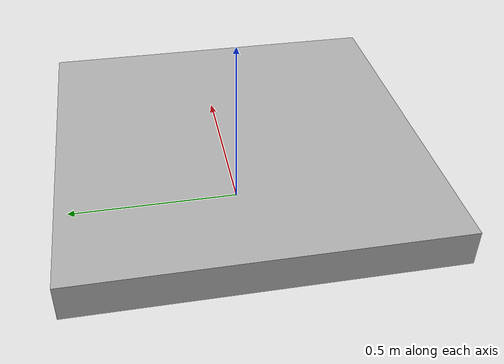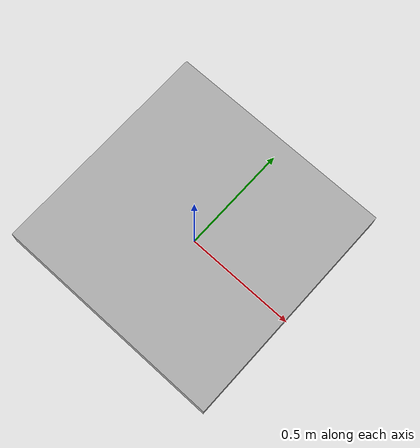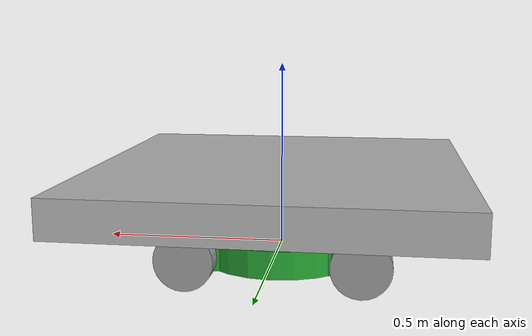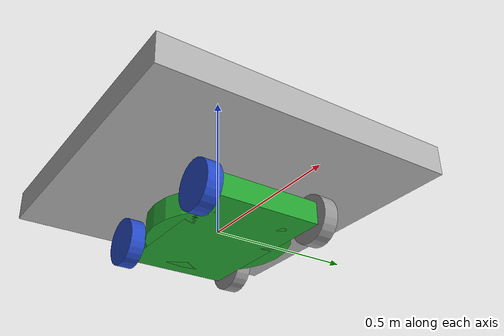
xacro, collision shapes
<?xml version='1.0'?>

<robot name="skid_steer_bot" xmlns:xacro="http://www.ros.org/wiki/xacro">

  <xacro:include filename="$(find skid_steer_bot)/urdf/skid_steer_bot.gazebo" />

  <!-- Scale the robot size to fit the environment -->
  <xacro:property name="scale" value="1.0" />

  <!-- Length along X-axis, Width along Y-axis, Height along Z-axis -->
  <xacro:property name="mower_width" value="${scale * 0.46}" />
  <xacro:property name="mower_length" value="${scale * 0.46}" />
  <xacro:property name="mower_height" value="${scale * 0.3}" />
  <xacro:property name="mower_mass" value="${scale * 10}" />

  <xacro:property name="base_x_offset" value="0" />

  <!-- inertia = 1/12*m(h^2+d^2) -->
  <xacro:property name="height_2" value="${mower_height * mower_height}" />
  <xacro:property name="width_2" value="${mower_width * mower_width}" />
  <xacro:property name="length_2" value="${mower_length * mower_length}" />
  <xacro:property name="mower_inertia_xx" value="${mower_mass/12.0 * (height_2 + width_2)}" />
  <xacro:property name="mower_inertia_yy" value="${mower_mass/12.0 * (height_2 + length_2)}" />
  <xacro:property name="mower_inertia_zz" value="${mower_mass/12.0 * (width_2 + length_2)}" />
  <xacro:property name="mower_i_x_pos" value="${base_x_offset}" />
  <xacro:property name="mower_i_z_pos" value="${mower_height/3.0}" />

  <xacro:property name="mower_frame_width" value="${mower_width - 2.1 * wheel_length}" />
  <xacro:property name="mower_frame_length" value="${mower_length*1.2}" />
  <xacro:property name="mower_frame_height" value="${mower_height/4.0}" />

  <xacro:property name="hardware_width" value="${mower_width/2.0}" />
  <xacro:property name="hardware_length" value="${mower_length/2.0}" />
  <xacro:property name="hardware_height" value="${mower_height/2.0}" />
  <xacro:property name="hardware_z_offset" value="${hardware_height/2.0}" />

  <xacro:property name="wheel_length" value="${scale * 0.05}" />
  <xacro:property name="wheel_radius" value="${scale * 0.08}" />
  <xacro:property name="wheel_mass" value="${scale * 1}" />
  <xacro:property name="wheel_inertia" value="${scale * 1e-3}" />
  <xacro:property name="wheel_x_offset" value="${base_x_offset + mower_length/2.0}" />
  <xacro:property name="wheel_y_offset" value="${mower_width/2.0 - wheel_length/2.0}" />

  <xacro:property name="camerra_width" value="0.05" />
  <xacro:property name="camerra_length" value="0.05" />
  <xacro:property name="camerra_height" value="0.05" />
  <xacro:property name="camerra_x_offset" value="${hardware_length/2.0 + base_x_offset - camerra_length/2.0 + 0.001}" />
  <xacro:property name="camerra_z_offset" value="${hardware_height - camerra_height/2.0 + 0.001}" />

  <xacro:property name="platform_width" value="1" />
  <xacro:property name="platform_length" value="1" />
  <xacro:property name="platform_height" value="0.1" />
  <xacro:property name="platform_x_offset" value="${base_x_offset}" />
  <xacro:property name="platform_z_offset" value="${hardware_height + 0.025}" />

  <xacro:property name="wheel_kp" value="1000000.0" />
  <xacro:property name="wheel_kd" value="100.0" />
  <xacro:property name="wheel_mu1" value="1" />
  <xacro:property name="wheel_mu2" value="1" />
  <xacro:property name="wheel_slip1" value="0.5" />
  <xacro:property name="wheel_slip2" value="0" />

  <link name="robot_footprint"></link>

  <joint name="robot_footprint_joint" type="fixed">
    <origin xyz="0 0 0" rpy="0 0 0" />
    <parent link="robot_footprint" />
    <child link="chassis" />
  </joint>

  <link name='chassis'>
    <inertial>
      <mass value="${mower_mass}"/>
      <origin xyz="${mower_i_x_pos} 0 ${mower_i_z_pos}" rpy=" 0 0 0"/>
      <inertia
          ixx="${mower_inertia_xx}" ixy="0" ixz="0"
          iyy="${mower_inertia_yy}" iyz="0"
          izz="${mower_inertia_zz}" />
    </inertial>

    <collision>
      <origin xyz="${base_x_offset} 0 0" rpy=" 0 0 0"/>
      <geometry>
        <box size="${mower_frame_length} ${mower_frame_width} ${mower_frame_height}"/>
      </geometry>
    </collision>
    <visual>
      <origin xyz="${base_x_offset} 0 0" rpy=" 0 0 0"/>
      <geometry>
        <box size="${mower_frame_length} ${mower_frame_width} ${mower_frame_height}"/>
      </geometry>
    </visual>

    <!-- blade frame -->
    <collision>
      <origin xyz="${base_x_offset} 0 0" rpy=" 0 0 0"/>
      <geometry>
        <cylinder radius="${mower_width/2.0}" length="${mower_frame_height}"/>
      </geometry>
    </collision>
    <visual>
      <origin xyz="${base_x_offset} 0 0" rpy=" 0 0 0"/>
      <geometry>
        <cylinder radius="${mower_width/2.0}" length="${mower_frame_height}"/>
      </geometry>
    </visual>

    <!-- hardware frame -->
    <collision>
      <origin xyz="${base_x_offset} 0 ${hardware_z_offset}" rpy=" 0 0 0"/>
      <geometry>
        <box size="${hardware_length} ${hardware_width} ${hardware_height}"/>
      </geometry>
    </collision>
    <visual>
      <origin xyz="${base_x_offset} 0 ${hardware_z_offset}" rpy=" 0 0 0"/>
      <geometry>
        <box size="${hardware_length} ${hardware_width} ${hardware_height}"/>
      </geometry>
    </visual>

  </link>

  <!-- left back wheel -->
  <joint type="continuous" name="left_back_wheel_hinge">
    <origin xyz="-${wheel_x_offset} ${wheel_y_offset} 0" rpy="0 0 0"/>
    <child link="left_back_wheel"/>
    <parent link="chassis"/>
    <axis xyz="0 1 0" rpy="0 0 0"/>
    <limit effort="10000" velocity="1000"/>
    <joint_properties damping="1.0" friction="1.0"/>
  </joint>

  <link name="left_back_wheel">
    <inertial>
      <mass value="${wheel_mass}"/>
      <origin xyz="0.0 0 0" rpy=" 0 1.5707 1.5707"/>
      <inertia
        ixx="${wheel_inertia}" ixy="0" ixz="0"
        iyy="${wheel_inertia}" iyz="0"
        izz="${wheel_inertia}" />
    </inertial>
    <collision name="left_back_wheel_collision">
      <origin xyz="0 0 0" rpy=" 0 1.5707 1.5707"/>
      <geometry>
        <cylinder length="${wheel_length}" radius="${wheel_radius}"/>
      </geometry>
      <surface>
        <friction>
          <fdir1>1 0 0</fdir1>
          <kp>${wheel_kp}</kp> <!-- kp and kd for rubber -->
          <kd>${wheel_kd}</kd>
          <mu>${wheel_mu1}</mu>
          <mu2>${wheel_mu2}</mu2>
          <slip1>${wheel_slip1}</slip1>
          <slip2>${wheel_slip2}</slip2>
        </friction>
      </surface>
    </collision>
    <visual name="left_back_wheel_visual">
      <origin xyz="0 0 0" rpy=" 0 0 1.5707"/>
      <geometry>
        <mesh filename="package://skid_steer_bot/meshes/wheel_rig_3d.dae" scale=".1 .1 .1"/>
      </geometry>
    </visual>
  </link>

  <!-- right back wheel -->
  <joint type="continuous" name="right_back_wheel_hinge">
    <origin xyz="-${wheel_x_offset} -${wheel_y_offset} 0" rpy="0 0 0"/>
    <child link="right_back_wheel"/>
    <parent link="chassis"/>
    <axis xyz="0 1 0" rpy="0 0 0"/>
    <limit effort="10000" velocity="1000"/>
    <joint_properties damping="1.0" friction="1.0"/>
  </joint>

  <link name="right_back_wheel">
    <inertial>
      <mass value="${wheel_mass}"/>
      <origin xyz="0.0 0 0" rpy=" 0 1.5707 1.5707"/>
      <inertia
          ixx="${wheel_inertia}" ixy="0" ixz="0"
          iyy="${wheel_inertia}" iyz="0"
          izz="${wheel_inertia}" />
    </inertial>
    <collision name="right_back_wheel_collision">
      <origin xyz="0 0 0" rpy=" 0 1.5707 1.5707"/>
      <geometry>
        <cylinder length="${wheel_length}" radius="${wheel_radius}"/>
      </geometry>
      <surface>
        <friction>
          <fdir1>1 0 0</fdir1>
          <kp>${wheel_kp}</kp> <!-- kp and kd for rubber -->
          <kd>${wheel_kd}</kd>
          <mu>${wheel_mu1}</mu>
          <mu2>${wheel_mu2}</mu2>
          <slip1>${wheel_slip1}</slip1>
          <slip2>${wheel_slip2}</slip2>
        </friction>
      </surface>
    </collision>
    <visual name="right_back_wheel_visual">
      <origin xyz="0 0 0" rpy=" 0 0 1.5707"/>
      <geometry>
        <mesh filename="package://skid_steer_bot/meshes/wheel_rig_3d.dae" scale=".1 .1 .1"/>
      </geometry>
    </visual>
  </link>

  <!-- left front wheel -->
  <joint type="continuous" name="left_front_wheel_hinge">
    <origin xyz="${wheel_x_offset} ${wheel_y_offset} 0" rpy="0 0 0"/>
    <child link="left_front_wheel"/>
    <parent link="chassis"/>
    <axis xyz="0 1 0" rpy="0 0 0"/>
    <limit effort="10000" velocity="1000"/>
    <joint_properties damping="1.0" friction="1.0"/>
  </joint>

  <link name="left_front_wheel">
    <inertial>
      <mass value="${wheel_mass}"/>
      <origin xyz="0.0 0 0" rpy=" 0 1.5707 1.5707"/>
      <inertia
        ixx="${wheel_inertia}" ixy="0" ixz="0"
        iyy="${wheel_inertia}" iyz="0"
        izz="${wheel_inertia}" />
    </inertial>
    <collision name="left_front_wheel_collision">
      <origin xyz="0 0 0" rpy=" 0 1.5707 1.5707"/>
      <geometry>
        <cylinder length="${wheel_length}" radius="${wheel_radius}"/>
      </geometry>
      <surface>
        <friction>
          <fdir1>1 0 0</fdir1>
          <kp>${wheel_kp}</kp> <!-- kp and kd for rubber -->
          <kd>${wheel_kd}</kd>
          <mu>${wheel_mu1}</mu>
          <mu2>${wheel_mu2}</mu2>
          <slip1>${wheel_slip1}</slip1>
          <slip2>${wheel_slip2}</slip2>
        </friction>
      </surface>
    </collision>
    <visual name="left_front_wheel_visual">
      <origin xyz="0 0 0" rpy=" 0 0 1.5707"/>
      <geometry>
        <mesh filename="package://skid_steer_bot/meshes/wheel_rig_3d.dae" scale=".1 .1 .1"/>
      </geometry>
    </visual>
  </link>

  <!-- right front wheel -->
  <joint type="continuous" name="right_front_wheel_hinge">
    <origin xyz="${wheel_x_offset} -${wheel_y_offset} 0" rpy="0 0 0"/>
    <child link="right_front_wheel"/>
    <parent link="chassis"/>
    <axis xyz="0 1 0" rpy="0 0 0"/>
    <limit effort="10000" velocity="1000"/>
    <joint_properties damping="1.0" friction="1.0"/>
  </joint>

  <link name="right_front_wheel">
    <inertial>
      <mass value="${wheel_mass}"/>
      <origin xyz="0.0 0 0" rpy=" 0 1.5707 1.5707"/>
      <inertia
          ixx="${wheel_inertia}" ixy="0" ixz="0"
          iyy="${wheel_inertia}" iyz="0"
          izz="${wheel_inertia}" />
    </inertial>
    <collision name="right_front_wheel_collision">
      <origin xyz="0 0 0" rpy=" 0 1.5707 1.5707"/>
      <geometry>
        <cylinder length="${wheel_length}" radius="${wheel_radius}"/>
      </geometry>
      <surface>
        <friction>
          <fdir1>1 0 0</fdir1>
          <kp>${wheel_kp}</kp> <!-- kp and kd for rubber -->
          <kd>${wheel_kd}</kd>
          <mu>${wheel_mu1}</mu>
          <mu2>${wheel_mu2}</mu2>
          <slip1>${wheel_slip1}</slip1>
          <slip2>${wheel_slip2}</slip2>
        </friction>
      </surface>
    </collision>
    <visual name="right_front_wheel_visual">
      <origin xyz="0 0 0" rpy=" 0 0 1.5707"/>
      <geometry>
        <mesh filename="package://skid_steer_bot/meshes/wheel_rig_3d.dae" scale=".1 .1 .1"/>
      </geometry>
    </visual>
  </link>

  <link name='skid_steer_bot_camera'>
    <inertial>
      <mass value="0.1"/>
      <origin xyz="0 0 0" rpy=" 0 0 0"/>
      <inertia
          ixx="1e-6" ixy="0" ixz="0"
          iyy="1e-6" iyz="0"
          izz="1e-6"/>
    </inertial>
    <collision name='skid_steer_bot_camera_collision'>
      <origin xyz="0 0 0" rpy=" 0 0 0"/>
      <geometry>
        <box size="${camerra_length} ${camerra_width} ${camerra_height}"/>
      </geometry>
    </collision>
    <visual name='skid_steer_bot_camera_visual'>
      <origin xyz="0 0 0" rpy=" 0 0 0"/>
      <geometry>
        <box size="${camerra_length} ${camerra_width} ${camerra_height}"/>
      </geometry>
    </visual>
  </link>

  <joint type="fixed" name="skid_steer_bot_camera_joint">
    <origin xyz="${camerra_x_offset} 0 ${camerra_z_offset}" rpy="0 0 0"/>
    <child link="skid_steer_bot_camera"/>
    <parent link="chassis"/>
    <axis xyz="0 1 0" rpy="0 0 0"/>
    <limit effort="10000" velocity="1000"/>
    <joint_properties damping="1.0" friction="1.0"/>
  </joint>

  <link name='platform'>
    <pose>0 0 0 0 0 0</pose>
    <inertial>
      <mass value="0.1"/>
      <origin xyz="0 0 0" rpy=" 0 0 0"/>
      <inertia
          ixx="1e-6" ixy="0" ixz="0"
          iyy="1e-6" iyz="0"
          izz="1e-6" />
    </inertial>
    <collision name='platform_collision'>
      <origin xyz="0 0 0" rpy=" 0 0 0"/>
      <geometry>
        <box size="${platform_length} ${platform_width} ${platform_height}"/>
      </geometry>
    </collision>
    <visual name='platform_visual'>
      <origin xyz="0 0 0" rpy=" 0 0 0"/>
      <geometry>
        <box size="${platform_length} ${platform_width} ${platform_height}"/>
      </geometry>
    </visual>
  </link>

  <joint type="fixed" name="platform_joint">
    <origin xyz="${platform_x_offset} 0 ${platform_z_offset}" rpy="0 0 0"/>
    <child link="platform"/>
    <parent link="chassis"/>
    <axis xyz="0 1 0" rpy="0 0 0"/>
    <limit effort="10000" velocity="1000"/>
    <joint_properties damping="1.0" friction="1.0"/>
  </joint>

</robot>
